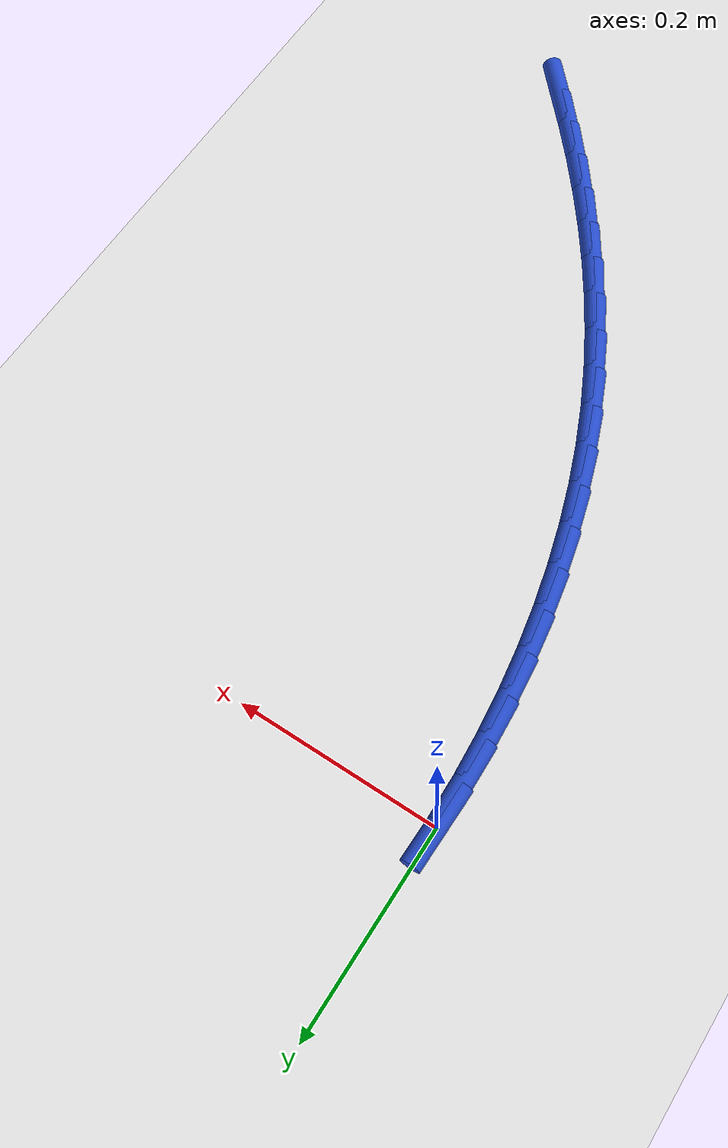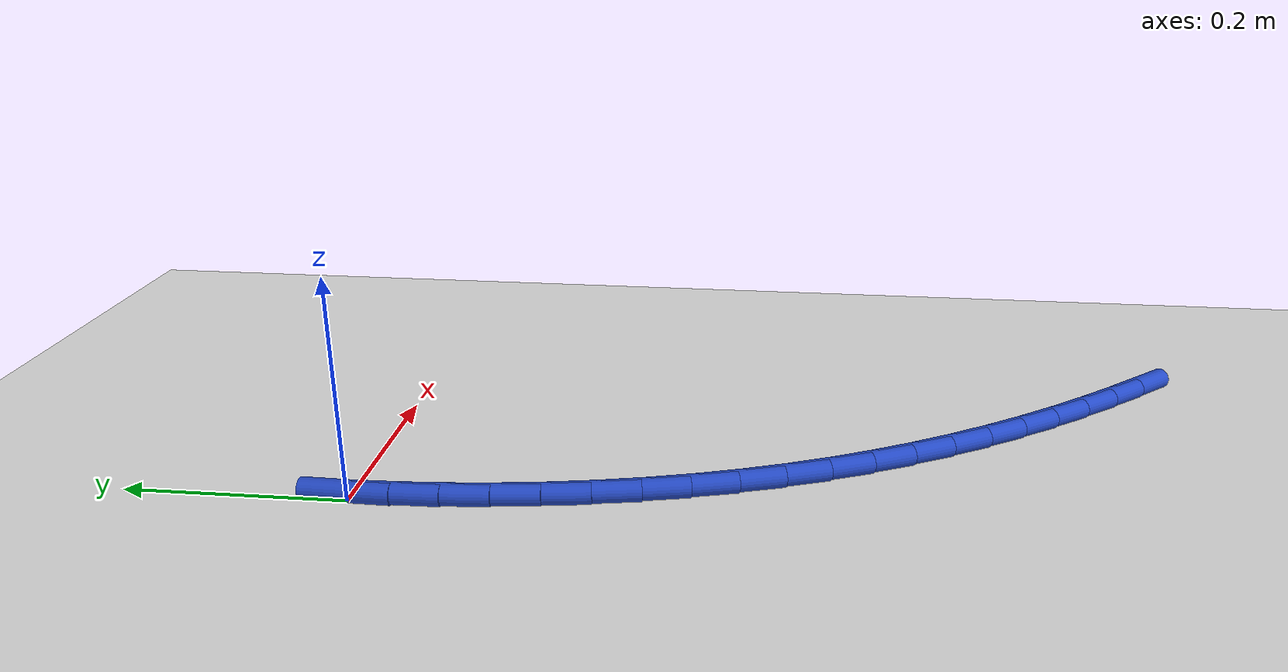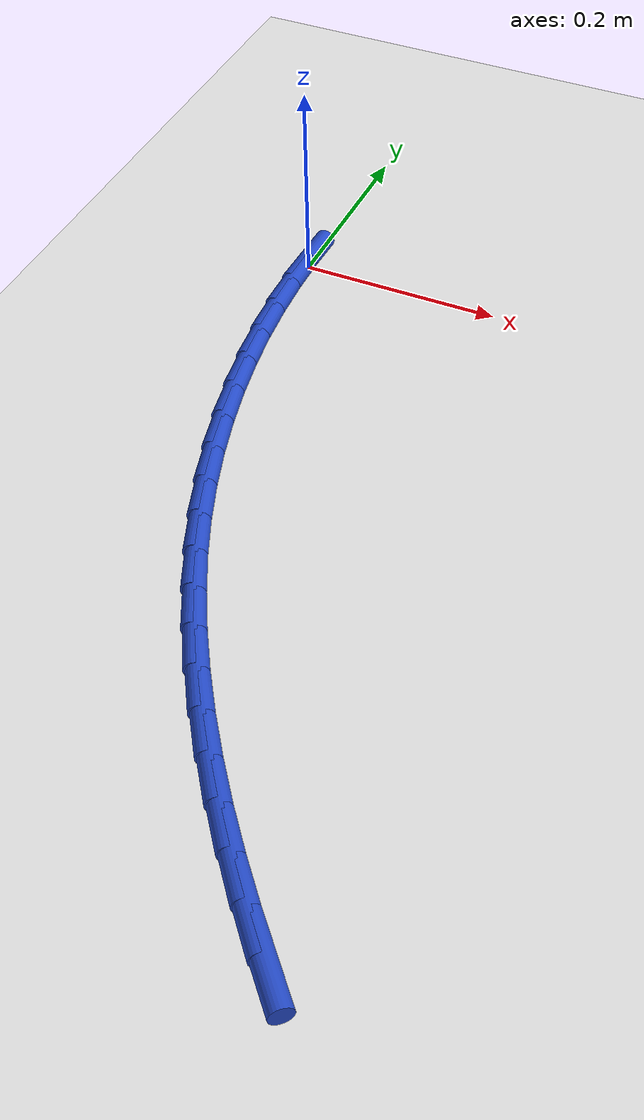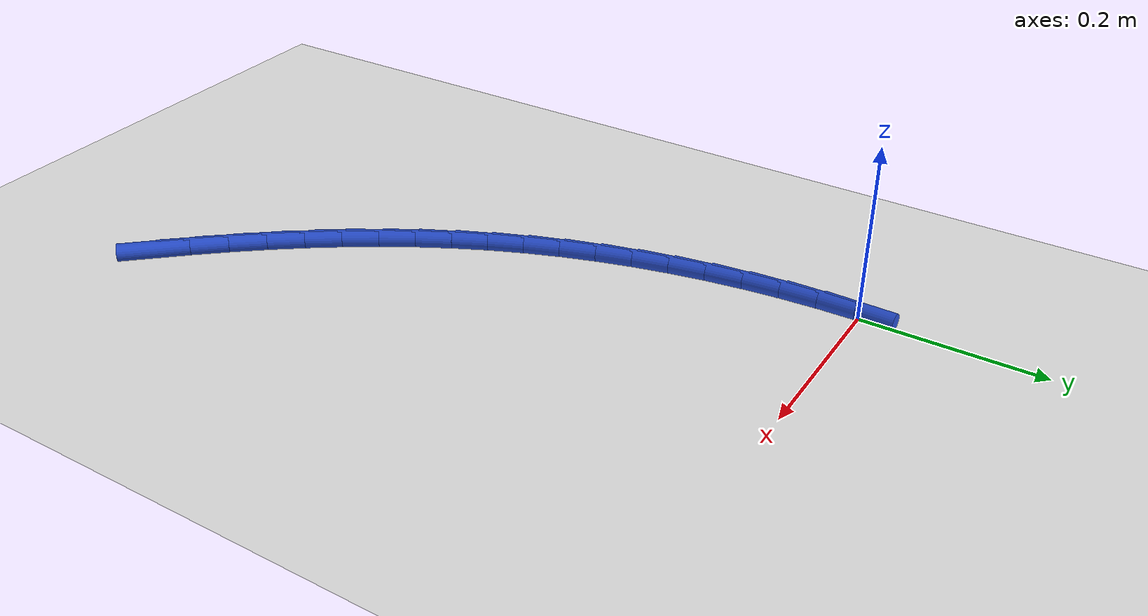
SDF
<sdf version="1.6">
 <world name="default">
  <model name="ground_plane">
   <static>1</static>
   <link name="link">
    <collision name="collision">
     <geometry><plane><normal>0 0 1</normal><size>100 100</size></plane></geometry>
     <surface><friction><ode><mu>100</mu><mu2>50</mu2></ode></friction></surface>
    </collision>
    <visual name="visual">
     <cast_shadows>0</cast_shadows>
     <geometry><plane><normal>0 0 1</normal><size>100 100</size></plane></geometry>
     <material>
      <script><uri>file://media/materials/scripts/gazebo.material</uri><name>Gazebo/WhiteGlow</name></script>
     </material>
    </visual>
   </link>
  </model>
  <model name="line">
   <link name="link_0">
    <pose>3.2959746043559335e-17 -6.938893903907228e-17 0.01 0 1.57 1.5512849060006757</pose>
    <collision name="collision">
     <geometry><cylinder><radius>0.01</radius><length>0.08</length></cylinder></geometry>
    </collision>
    <visual name="visual">
     <material>
      <script><name>Gazebo/Blue</name><uri>file://media/materials/scripts/gazebo.material</uri></script>
     </material>
     <geometry><cylinder><radius>0.01</radius><length>0.08</length></cylinder></geometry>
    </visual>
   </link>
   <link name="link_141">
    <pose>0.3031165765469502 -0.718142136725627 0.01 0 1.57 -0.8321801955195868</pose>
    <collision name="collision">
     <geometry><cylinder><radius>0.01</radius><length>0.08</length></cylinder></geometry>
    </collision>
    <visual name="visual">
     <material>
      <script><name>Gazebo/Blue</name><uri>file://media/materials/scripts/gazebo.material</uri></script>
     </material>
     <geometry><cylinder><radius>0.01</radius><length>0.08</length></cylinder></geometry>
    </visual>
   </link>
   <link name="link_142">
    <pose>0.27420484744306217 -0.6863903740378361 0.01 0 1.57 -0.8597681557336914</pose>
    <collision name="collision">
     <geometry><cylinder><radius>0.01</radius><length>0.08</length></cylinder></geometry>
    </collision>
    <visual name="visual">
     <material>
      <script><name>Gazebo/Blue</name><uri>file://media/materials/scripts/gazebo.material</uri></script>
     </material>
     <geometry><cylinder><radius>0.01</radius><length>0.08</length></cylinder></geometry>
    </visual>
   </link>
   <link name="link_143">
    <pose>0.2463471482210699 -0.6540472689743464 0.01 0 1.57 -0.8895736450428937</pose>
    <collision name="collision">
     <geometry><cylinder><radius>0.01</radius><length>0.08</length></cylinder></geometry>
    </collision>
    <visual name="visual">
     <material>
      <script><name>Gazebo/Blue</name><uri>file://media/materials/scripts/gazebo.material</uri></script>
     </material>
     <geometry><cylinder><radius>0.01</radius><length>0.08</length></cylinder></geometry>
    </visual>
   </link>
   <link name="link_144">
    <pose>0.21962235012638348 -0.6210815943480125 0.01 0 1.57 -0.9216630635929918</pose>
    <collision name="collision">
     <geometry><cylinder><radius>0.01</radius><length>0.08</length></cylinder></geometry>
    </collision>
    <visual name="visual">
     <material>
      <script><name>Gazebo/Blue</name><uri>file://media/materials/scripts/gazebo.material</uri></script>
     </material>
     <geometry><cylinder><radius>0.01</radius><length>0.08</length></cylinder></geometry>
    </visual>
   </link>
   <link name="link_145">
    <pose>0.19410961363339999 -0.5874607850038032 0.01 0 1.57 -0.956060558445821</pose>
    <collision name="collision">
     <geometry><cylinder><radius>0.01</radius><length>0.08</length></cylinder></geometry>
    </collision>
    <visual name="visual">
     <material>
      <script><name>Gazebo/Blue</name><uri>file://media/materials/scripts/gazebo.material</uri></script>
     </material>
     <geometry><cylinder><radius>0.01</radius><length>0.08</length></cylinder></geometry>
    </visual>
   </link>
   <link name="link_146">
    <pose>0.16988809921651596 -0.5531522757866872 0.01 0 1.57 -0.9927686360617969</pose>
    <collision name="collision">
     <geometry><cylinder><radius>0.01</radius><length>0.08</length></cylinder></geometry>
    </collision>
    <visual name="visual">
     <material>
      <script><name>Gazebo/Blue</name><uri>file://media/materials/scripts/gazebo.material</uri></script>
     </material>
     <geometry><cylinder><radius>0.01</radius><length>0.08</length></cylinder></geometry>
    </visual>
   </link>
   <link name="link_147">
    <pose>0.14703696735012942 -0.5181235015416353 0.01 0 1.57 -1.0317624749833954</pose>
    <collision name="collision">
     <geometry><cylinder><radius>0.01</radius><length>0.08</length></cylinder></geometry>
    </collision>
    <visual name="visual">
     <material>
      <script><name>Gazebo/Blue</name><uri>file://media/materials/scripts/gazebo.material</uri></script>
     </material>
     <geometry><cylinder><radius>0.01</radius><length>0.08</length></cylinder></geometry>
    </visual>
   </link>
   <link name="link_148">
    <pose>0.12563537850863699 -0.48234189711361625 0.01 0 1.57 -1.072984214182039</pose>
    <collision name="collision">
     <geometry><cylinder><radius>0.01</radius><length>0.08</length></cylinder></geometry>
    </collision>
    <visual name="visual">
     <material>
      <script><name>Gazebo/Blue</name><uri>file://media/materials/scripts/gazebo.material</uri></script>
     </material>
     <geometry><cylinder><radius>0.01</radius><length>0.08</length></cylinder></geometry>
    </visual>
   </link>
   <link name="link_149">
    <pose>0.10576249316643577 -0.44577489734759945 0.01 0 1.57 -1.1163376681215593</pose>
    <collision name="collision">
     <geometry><cylinder><radius>0.01</radius><length>0.08</length></cylinder></geometry>
    </collision>
    <visual name="visual">
     <material>
      <script><name>Gazebo/Blue</name><uri>file://media/materials/scripts/gazebo.material</uri></script>
     </material>
     <geometry><cylinder><radius>0.01</radius><length>0.08</length></cylinder></geometry>
    </visual>
   </link>
   <link name="link_150">
    <pose>0.08749747179792278 -0.40838993708855414 0.01 0 1.57 -1.161666925703719</pose>
    <collision name="collision">
     <geometry><cylinder><radius>0.01</radius><length>0.08</length></cylinder></geometry>
    </collision>
    <visual name="visual">
     <material>
      <script><name>Gazebo/Blue</name><uri>file://media/materials/scripts/gazebo.material</uri></script>
     </material>
     <geometry><cylinder><radius>0.01</radius><length>0.08</length></cylinder></geometry>
    </visual>
   </link>
   <link name="link_151">
    <pose>0.0709190213440596 -0.3701551980249982 0.01 0 1.57 -1.207740682261242</pose>
    <collision name="collision">
     <geometry><cylinder><radius>0.01</radius><length>0.08</length></cylinder></geometry>
    </collision>
    <visual name="visual">
     <material>
      <script><name>Gazebo/Blue</name><uri>file://media/materials/scripts/gazebo.material</uri></script>
     </material>
     <geometry><cylinder><radius>0.01</radius><length>0.08</length></cylinder></geometry>
    </visual>
   </link>
   <link name="link_152">
    <pose>0.05607696965110249 -0.33108641769008446 0.01 0 1.57 -1.2528713212601506</pose>
    <collision name="collision">
     <geometry><cylinder><radius>0.01</radius><length>0.08</length></cylinder></geometry>
    </collision>
    <visual name="visual">
     <material>
      <script><name>Gazebo/Blue</name><uri>file://media/materials/scripts/gazebo.material</uri></script>
     </material>
     <geometry><cylinder><radius>0.01</radius><length>0.08</length></cylinder></geometry>
    </visual>
   </link>
   <link name="link_153">
    <pose>0.042975396131962 -0.2912746685750191 0.01 0 1.57 -1.2970287269910095</pose>
    <collision name="collision">
     <geometry><cylinder><radius>0.01</radius><length>0.08</length></cylinder></geometry>
    </collision>
    <visual name="visual">
     <material>
      <script><name>Gazebo/Blue</name><uri>file://media/materials/scripts/gazebo.material</uri></script>
     </material>
     <geometry><cylinder><radius>0.01</radius><length>0.08</length></cylinder></geometry>
    </visual>
   </link>
   <link name="link_154">
    <pose>0.031614327329913816 -0.2508176971211674 0.01 0 1.57 -1.3403427966964443</pose>
    <collision name="collision">
     <geometry><cylinder><radius>0.01</radius><length>0.08</length></cylinder></geometry>
    </collision>
    <visual name="visual">
     <material>
      <script><name>Gazebo/Blue</name><uri>file://media/materials/scripts/gazebo.material</uri></script>
     </material>
     <geometry><cylinder><radius>0.01</radius><length>0.08</length></cylinder></geometry>
    </visual>
   </link>
   <link name="link_155">
    <pose>0.0219937897882336 -0.2098132497698947 0.01 0 1.57 -1.3829485589354114</pose>
    <collision name="collision">
     <geometry><cylinder><radius>0.01</radius><length>0.08</length></cylinder></geometry>
    </collision>
    <visual name="visual">
     <material>
      <script><name>Gazebo/Blue</name><uri>file://media/materials/scripts/gazebo.material</uri></script>
     </material>
     <geometry><cylinder><radius>0.01</radius><length>0.08</length></cylinder></geometry>
    </visual>
   </link>
   <link name="link_156">
    <pose>0.01411381005019687 -0.16835907296256547 0.01 0 1.57 -1.424984712649416</pose>
    <collision name="collision">
     <geometry><cylinder><radius>0.01</radius><length>0.08</length></cylinder></geometry>
    </collision>
    <visual name="visual">
     <material>
      <script><name>Gazebo/Blue</name><uri>file://media/materials/scripts/gazebo.material</uri></script>
     </material>
     <geometry><cylinder><radius>0.01</radius><length>0.08</length></cylinder></geometry>
    </visual>
   </link>
   <link name="link_157">
    <pose>0.007974414659079578 -0.1265529131405465 0.01 0 1.57 -1.4665925615150142</pose>
    <collision name="collision">
     <geometry><cylinder><radius>0.01</radius><length>0.08</length></cylinder></geometry>
    </collision>
    <visual name="visual">
     <material>
      <script><name>Gazebo/Blue</name><uri>file://media/materials/scripts/gazebo.material</uri></script>
     </material>
     <geometry><cylinder><radius>0.01</radius><length>0.08</length></cylinder></geometry>
    </visual>
   </link>
   <link name="link_158">
    <pose>0.003575630158157231 -0.08449251674520242 0.01 0 1.57 -1.5079152642797127</pose>
    <collision name="collision">
     <geometry><cylinder><radius>0.01</radius><length>0.08</length></cylinder></geometry>
    </collision>
    <visual name="visual">
     <material>
      <script><name>Gazebo/Blue</name><uri>file://media/materials/scripts/gazebo.material</uri></script>
     </material>
     <geometry><cylinder><radius>0.01</radius><length>0.08</length></cylinder></geometry>
    </visual>
   </link>
   <link name="link_159">
    <pose>0.0009174830907054954 -0.04227563021789841 0.01 0 1.57 -1.5490973223456102</pose>
    <collision name="collision">
     <geometry><cylinder><radius>0.01</radius><length>0.08</length></cylinder></geometry>
    </collision>
    <visual name="visual">
     <material>
      <script><name>Gazebo/Blue</name><uri>file://media/materials/scripts/gazebo.material</uri></script>
     </material>
     <geometry><cylinder><radius>0.01</radius><length>0.08</length></cylinder></geometry>
    </visual>
   </link>
  </model>
 </world>
</sdf>
